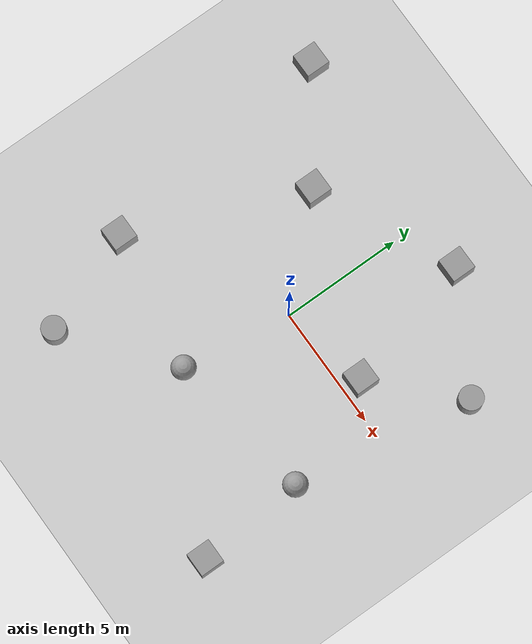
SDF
<sdf version="1.6">
 <world name="default">
  <light name="sun" type="directional">
   <pose>0 0 10 0 -0 0</pose>
   <diffuse>0.8 0.8 0.8 1</diffuse>
   <specular>0.1 0.1 0.1 1</specular>
   <attenuation>
    <range>1000</range>
    <constant>0.9</constant>
    <linear>0.01</linear>
    <quadratic>0.001</quadratic>
   </attenuation>
   <direction>-0.5 0.5 -1</direction>
  </light>
  <model name="ground_plane">
   <static>1</static>
   <link name="link">
    <collision name="collision">
     <geometry><plane><normal>0 0 1</normal><size>100 100</size></plane></geometry>
     <surface><friction><ode><mu>100</mu><mu2>50</mu2></ode></friction></surface>
    </collision>
    <visual name="visual">
     <cast_shadows>0</cast_shadows>
     <geometry><plane><normal>0 0 1</normal><size>100 100</size></plane></geometry>
     <material>
      <script><uri>file://media/materials/scripts/gazebo.material</uri><name>Gazebo/Grey</name></script>
     </material>
    </visual>
   </link>
  </model>
  <gravity>0 0 -9.8</gravity>
  <magnetic_field>6e-06 2.3e-05 -4.2e-05</magnetic_field>
  <atmosphere type="adiabatic"/>
  <physics name="default_physics" default="0" type="ode">
   <max_step_size>0.001</max_step_size>
   <real_time_factor>1</real_time_factor>
   <real_time_update_rate>1000</real_time_update_rate>
  </physics>
  <scene><ambient>0.4 0.4 0.4 1</ambient><background>0.7 0.7 0.7 1</background><shadows>1</shadows></scene>
  <spherical_coordinates>
   <surface_model>EARTH_WGS84</surface_model>
   <latitude_deg>0</latitude_deg>
   <longitude_deg>0</longitude_deg>
   <elevation>0</elevation>
   <heading_deg>0</heading_deg>
  </spherical_coordinates>
  <model name="unit_box_0">
   <pose>-3.43523 3.61678 0.499995 -1e-05 0 0</pose>
   <link name="link">
    <inertial>
     <mass>1</mass>
     <inertia>
      <ixx>0.166667</ixx>
      <ixy>0</ixy>
      <ixz>0</ixz>
      <iyy>0.166667</iyy>
      <iyz>0</iyz>
      <izz>0.166667</izz>
     </inertia>
    </inertial>
    <collision name="collision"><geometry><box><size>1 1 1</size></box></geometry></collision>
    <visual name="visual">
     <geometry><box><size>1 1 1</size></box></geometry>
     <material>
      <script><name>Gazebo/Grey</name><uri>file://media/materials/scripts/gazebo.material</uri></script>
     </material>
    </visual>
   </link>
  </model>
  <model name="unit_box_1">
   <pose>-7.57306 6.4897 0.499995 0 1e-05 0</pose>
   <link name="link">
    <inertial>
     <mass>1</mass>
     <inertia>
      <ixx>0.166667</ixx>
      <ixy>0</ixy>
      <ixz>0</ixz>
      <iyy>0.166667</iyy>
      <iyz>0</iyz>
      <izz>0.166667</izz>
     </inertia>
    </inertial>
    <collision name="collision"><geometry><box><size>1 1 1</size></box></geometry></collision>
    <visual name="visual">
     <geometry><box><size>1 1 1</size></box></geometry>
     <material>
      <script><name>Gazebo/Grey</name><uri>file://media/materials/scripts/gazebo.material</uri></script>
     </material>
    </visual>
   </link>
  </model>
  <model name="unit_box_2">
   <pose>-6.28003 -3.5095 0.499995 -1e-05 0 0</pose>
   <link name="link">
    <inertial>
     <mass>1</mass>
     <inertia>
      <ixx>0.166667</ixx>
      <ixy>0</ixy>
      <ixz>0</ixz>
      <iyy>0.166667</iyy>
      <iyz>0</iyz>
      <izz>0.166667</izz>
     </inertia>
    </inertial>
    <collision name="collision"><geometry><box><size>1 1 1</size></box></geometry></collision>
    <visual name="visual">
     <geometry><box><size>1 1 1</size></box></geometry>
     <material>
      <script><name>Gazebo/Grey</name><uri>file://media/materials/scripts/gazebo.material</uri></script>
     </material>
    </visual>
   </link>
  </model>
  <model name="unit_sphere_0">
   <pose>-0.648154 -4.47874 0.5 0 -0 0</pose>
   <link name="link">
    <inertial>
     <mass>1</mass>
     <inertia><ixx>0.1</ixx><ixy>0</ixy><ixz>0</ixz><iyy>0.1</iyy><iyz>0</iyz><izz>0.1</izz></inertia>
    </inertial>
    <collision name="collision"><geometry><sphere><radius>0.5</radius></sphere></geometry></collision>
    <visual name="visual">
     <geometry><sphere><radius>0.5</radius></sphere></geometry>
     <material>
      <script><name>Gazebo/Grey</name><uri>file://media/materials/scripts/gazebo.material</uri></script>
     </material>
    </visual>
   </link>
  </model>
  <model name="unit_cylinder_0">
   <pose>6.71969 3.68494 0.499998 3e-06 -4e-06 0</pose>
   <link name="link">
    <inertial>
     <mass>1</mass>
     <inertia><ixx>0.145833</ixx><ixy>0</ixy><ixz>0</ixz><iyy>0.145833</iyy><iyz>0</iyz><izz>0.125</izz></inertia>
    </inertial>
    <collision name="collision">
     <geometry><cylinder><radius>0.5</radius><length>1</length></cylinder></geometry>
    </collision>
    <visual name="visual">
     <geometry><cylinder><radius>0.5</radius><length>1</length></cylinder></geometry>
     <material>
      <script><name>Gazebo/Grey</name><uri>file://media/materials/scripts/gazebo.material</uri></script>
     </material>
    </visual>
   </link>
  </model>
  <model name="unit_sphere_1">
   <pose>5.47769 -3.62572 0.5 0 -0 0</pose>
   <link name="link">
    <inertial>
     <mass>1</mass>
     <inertia><ixx>0.1</ixx><ixy>0</ixy><ixz>0</ixz><iyy>0.1</iyy><iyz>0</iyz><izz>0.1</izz></inertia>
    </inertial>
    <collision name="collision"><geometry><sphere><radius>0.5</radius></sphere></geometry></collision>
    <visual name="visual">
     <geometry><sphere><radius>0.5</radius></sphere></geometry>
     <material>
      <script><name>Gazebo/Grey</name><uri>file://media/materials/scripts/gazebo.material</uri></script>
     </material>
    </visual>
   </link>
  </model>
  <model name="unit_cylinder_1">
   <pose>-4.69806 -7.66371 0.499993 -3e-06 -3e-06 0</pose>
   <link name="link">
    <inertial>
     <mass>1</mass>
     <inertia><ixx>0.145833</ixx><ixy>0</ixy><ixz>0</ixz><iyy>0.145833</iyy><iyz>0</iyz><izz>0.125</izz></inertia>
    </inertial>
    <collision name="collision">
     <geometry><cylinder><radius>0.5</radius><length>1</length></cylinder></geometry>
    </collision>
    <visual name="visual">
     <geometry><cylinder><radius>0.5</radius><length>1</length></cylinder></geometry>
     <material>
      <script><name>Gazebo/Grey</name><uri>file://media/materials/scripts/gazebo.material</uri></script>
     </material>
    </visual>
   </link>
  </model>
  <model name="unit_box_3">
   <pose>2.22607 6.29875 0.499995 0 1e-05 0</pose>
   <link name="link">
    <inertial>
     <mass>1</mass>
     <inertia>
      <ixx>0.166667</ixx>
      <ixy>0</ixy>
      <ixz>0</ixz>
      <iyy>0.166667</iyy>
      <iyz>0</iyz>
      <izz>0.166667</izz>
     </inertia>
    </inertial>
    <collision name="collision"><geometry><box><size>1 1 1</size></box></geometry></collision>
    <visual name="visual">
     <geometry><box><size>1 1 1</size></box></geometry>
     <material>
      <script><name>Gazebo/Grey</name><uri>file://media/materials/scripts/gazebo.material</uri></script>
     </material>
    </visual>
   </link>
  </model>
  <model name="unit_box_4">
   <pose>5.79675 -8.03436 0.499995 -1e-05 0 0</pose>
   <link name="link">
    <inertial>
     <mass>1</mass>
     <inertia>
      <ixx>0.166667</ixx>
      <ixy>0</ixy>
      <ixz>0</ixz>
      <iyy>0.166667</iyy>
      <iyz>0</iyz>
      <izz>0.166667</izz>
     </inertia>
    </inertial>
    <collision name="collision"><geometry><box><size>1 1 1</size></box></geometry></collision>
    <visual name="visual">
     <geometry><box><size>1 1 1</size></box></geometry>
     <material>
      <script><name>Gazebo/Grey</name><uri>file://media/materials/scripts/gazebo.material</uri></script>
     </material>
    </visual>
   </link>
  </model>
  <model name="unit_box_5">
   <pose>3.61994 0.763838 0.5 0 -0 0</pose>
   <link name="link">
    <inertial>
     <mass>1</mass>
     <inertia>
      <ixx>0.166667</ixx>
      <ixy>0</ixy>
      <ixz>0</ixz>
      <iyy>0.166667</iyy>
      <iyz>0</iyz>
      <izz>0.166667</izz>
     </inertia>
    </inertial>
    <collision name="collision"><geometry><box><size>1 1 1</size></box></geometry></collision>
    <visual name="visual">
     <geometry><box><size>1 1 1</size></box></geometry>
     <material>
      <script><name>Gazebo/Grey</name><uri>file://media/materials/scripts/gazebo.material</uri></script>
     </material>
    </visual>
   </link>
  </model>
 </world>
</sdf>
